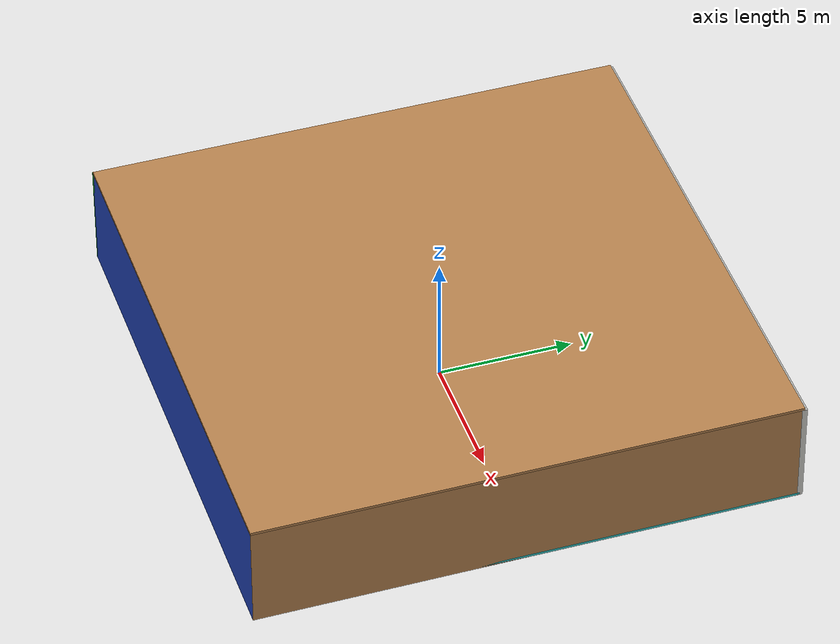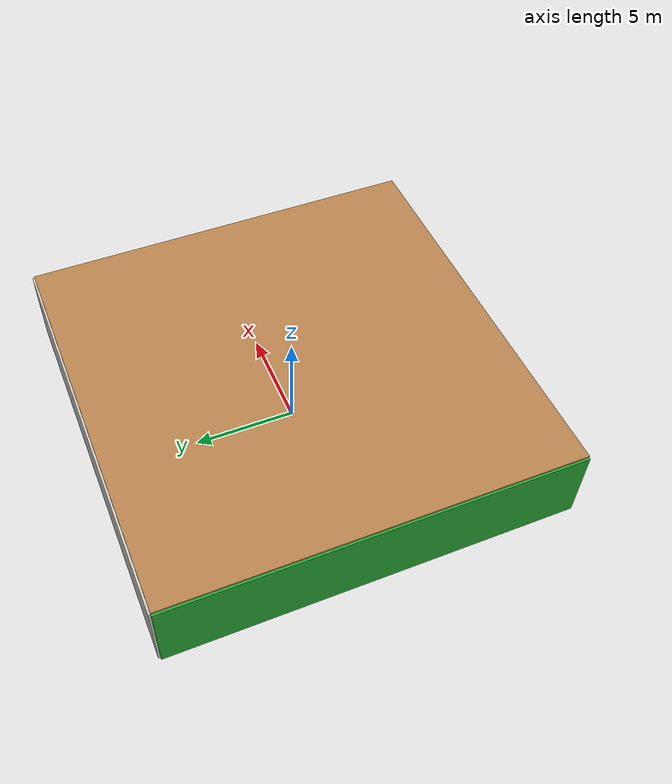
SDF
<sdf version="1.4">
 <world name="default">
  <physics type="ode">
   <max_step_size>0.001</max_step_size>
   <real_time_factor>1</real_time_factor>
   <real_time_update_rate>1000</real_time_update_rate>
   <gravity>0 0 -9.8</gravity>
  </physics>
  <scene><ambient>0.4 0.4 0.4 1</ambient><background>0.7 0.7 0.7 1</background><shadows>1</shadows></scene>
  <model name="Surrounding">
   <static>1</static>
   <link name="Ceiling">
    <collision name="Ceiling_Collision"><geometry><box><size>20 20 0.1</size></box></geometry></collision>
    <visual name="Ceiling_Visual">
     <geometry><box><size>20 20 0.1</size></box></geometry>
     <material>
      <script><uri>file://media/materials/scripts/gazebo.material</uri><name>Gazebo/Wood</name></script>
     </material>
    </visual>
    <pose>0 0 4.05 0 0 0</pose>
   </link>
   <link name="Wall_South">
    <collision name="Wall_South_Collision">
     <geometry><box><size>20 0 4</size></box></geometry>
     <pose>0 0 2 0 -0 0</pose>
    </collision>
    <visual name="Wall_South_Visual">
     <pose>0 0 2 0 -0 0</pose>
     <geometry><box><size>20 0 4</size></box></geometry>
     <material>
      <script><uri>file://media/materials/scripts/gazebo.material</uri><name>Gazebo/BlueGlow</name></script>
     </material>
    </visual>
    <velocity_decay><linear>0</linear><angular>0</angular></velocity_decay>
    <pose>0 -10 0 0 -0 0</pose>
   </link>
   <link name="Wall_East">
    <collision name="Wall_21_Collision">
     <geometry><box><size>20 0 4</size></box></geometry>
     <pose>0 0 2 0 -0 0</pose>
    </collision>
    <visual name="Wall_21_Visual">
     <pose>0 0 2 0 -0 0</pose>
     <geometry><box><size>20 0 4</size></box></geometry>
     <material>
      <script><uri>file://media/materials/scripts/gazebo.material</uri><name>Gazebo/WoodFloor</name></script>
     </material>
    </visual>
    <velocity_decay><linear>0</linear><angular>0</angular></velocity_decay>
    <pose>10 0 0 0 -0 1.5708</pose>
   </link>
   <link name="Wall_North">
    <collision name="Wall_22_Collision">
     <geometry><box><size>20 0.2 4</size></box></geometry>
     <pose>0 0 2 0 -0 0</pose>
    </collision>
    <visual name="Wall_22_Visual">
     <pose>0 0 2 0 -0 0</pose>
     <geometry><box><size>20 0.2 4</size></box></geometry>
     <material>
      <script><uri>file://media/materials/scripts/gazebo.material</uri><name>Gazebo/CeilingTiled</name></script>
     </material>
    </visual>
    <velocity_decay><linear>0</linear><angular>0</angular></velocity_decay>
    <pose>0 10 0 0 -0 0</pose>
   </link>
   <link name="Wall_West">
    <collision name="Wall_23_Collision">
     <geometry><box><size>20 0.2 4</size></box></geometry>
     <pose>0 0 2 0 -0 0</pose>
    </collision>
    <visual name="Wall_23_Visual">
     <pose>0 0 2 0 -0 0</pose>
     <geometry><box><size>20 0.2 4</size></box></geometry>
     <material>
      <script><uri>file://media/materials/scripts/gazebo.material</uri><name>Gazebo/Green</name></script>
     </material>
    </visual>
    <velocity_decay><linear>0</linear><angular>0</angular></velocity_decay>
    <pose>-10 0 0 0 0 -1.5708</pose>
   </link>
   <link name="Ground_link">
    <collision name="collision">
     <pose>0 0 .05 0 -0 0</pose>
     <geometry><box><size>20 20 0.1</size></box></geometry>
    </collision>
    <visual name="visual">
     <pose>0 0 .05 0 -0 0</pose>
     <geometry><box><size>20 20 0.1</size></box></geometry>
     <material>
      <script>
       <uri>file://media/materials/scripts/gazebo.material</uri>
       <name>Gazebo/TurquoiseGlowOutline</name>
      </script>
     </material>
    </visual>
   </link>
   <static>1</static>
  </model>
  <spherical_coordinates>
   <surface_model>EARTH_WGS84</surface_model>
   <latitude_deg>0</latitude_deg>
   <longitude_deg>0</longitude_deg>
   <elevation>0</elevation>
   <heading_deg>0</heading_deg>
  </spherical_coordinates>
  <light name="lightball_0" type="diffuse">
   <diffuse>0.8 0.8 0.8 1</diffuse>
   <specular>0.2 0.2 0.2 1</specular>
   <attenuation>
    <range>100</range>
    <constant>0.7</constant>
    <linear>0.01</linear>
    <quadratic>0.001</quadratic>
   </attenuation>
   <direction>-0.5 0.1 -0.9</direction>
   <pose>9.42359550009 4.2778774974 1.97514606109 0 0 0</pose>
  </light>
  <light name="lightball_1" type="diffuse">
   <diffuse>0.8 0.8 0.8 1</diffuse>
   <specular>0.2 0.2 0.2 1</specular>
   <attenuation>
    <range>100</range>
    <constant>0.7</constant>
    <linear>0.01</linear>
    <quadratic>0.001</quadratic>
   </attenuation>
   <direction>-0.5 0.1 -0.9</direction>
   <pose>-8.31466433002 5.11875691907 3.44073410915 0 0 0</pose>
  </light>
  <light name="lightball_2" type="diffuse">
   <diffuse>0.8 0.8 0.8 1</diffuse>
   <specular>0.2 0.2 0.2 1</specular>
   <attenuation>
    <range>100</range>
    <constant>0.7</constant>
    <linear>0.01</linear>
    <quadratic>0.001</quadratic>
   </attenuation>
   <direction>-0.5 0.1 -0.9</direction>
   <pose>-4.7104252997 -2.92828178882 3.51662110477 0 0 0</pose>
  </light>
  <light name="lightball_3" type="diffuse">
   <diffuse>0.8 0.8 0.8 1</diffuse>
   <specular>0.2 0.2 0.2 1</specular>
   <attenuation>
    <range>100</range>
    <constant>0.7</constant>
    <linear>0.01</linear>
    <quadratic>0.001</quadratic>
   </attenuation>
   <direction>-0.5 0.1 -0.9</direction>
   <pose>-9.87180636223 9.18185128186 3.1972291139 0 0 0</pose>
  </light>
  <light name="lightball_4" type="diffuse">
   <diffuse>0.8 0.8 0.8 1</diffuse>
   <specular>0.2 0.2 0.2 1</specular>
   <attenuation>
    <range>100</range>
    <constant>0.7</constant>
    <linear>0.01</linear>
    <quadratic>0.001</quadratic>
   </attenuation>
   <direction>-0.5 0.1 -0.9</direction>
   <pose>5.05123579174 0.372502100635 2.55368437696 0 0 0</pose>
  </light>
  <light name="lightball_5" type="diffuse">
   <diffuse>0.8 0.8 0.8 1</diffuse>
   <specular>0.2 0.2 0.2 1</specular>
   <attenuation>
    <range>100</range>
    <constant>0.7</constant>
    <linear>0.01</linear>
    <quadratic>0.001</quadratic>
   </attenuation>
   <direction>-0.5 0.1 -0.9</direction>
   <pose>-9.90081892004 0.326804203186 2.46425072957 0 0 0</pose>
  </light>
  <light name="lightball_6" type="diffuse">
   <diffuse>0.8 0.8 0.8 1</diffuse>
   <specular>0.2 0.2 0.2 1</specular>
   <attenuation>
    <range>100</range>
    <constant>0.7</constant>
    <linear>0.01</linear>
    <quadratic>0.001</quadratic>
   </attenuation>
   <direction>-0.5 0.1 -0.9</direction>
   <pose>9.45309746077 -9.66605691797 1.37567857455 0 0 0</pose>
  </light>
  <light name="lightball_7" type="diffuse">
   <diffuse>0.8 0.8 0.8 1</diffuse>
   <specular>0.2 0.2 0.2 1</specular>
   <attenuation>
    <range>100</range>
    <constant>0.7</constant>
    <linear>0.01</linear>
    <quadratic>0.001</quadratic>
   </attenuation>
   <direction>-0.5 0.1 -0.9</direction>
   <pose>1.39231005909 6.71848585151 0.619584928056 0 0 0</pose>
  </light>
  <light name="lightball_8" type="diffuse">
   <diffuse>0.8 0.8 0.8 1</diffuse>
   <specular>0.2 0.2 0.2 1</specular>
   <attenuation>
    <range>100</range>
    <constant>0.7</constant>
    <linear>0.01</linear>
    <quadratic>0.001</quadratic>
   </attenuation>
   <direction>-0.5 0.1 -0.9</direction>
   <pose>-1.90746149354 0.785035182711 3.82859035758 0 0 0</pose>
  </light>
  <light name="lightball_9" type="diffuse">
   <diffuse>0.8 0.8 0.8 1</diffuse>
   <specular>0.2 0.2 0.2 1</specular>
   <attenuation>
    <range>100</range>
    <constant>0.7</constant>
    <linear>0.01</linear>
    <quadratic>0.001</quadratic>
   </attenuation>
   <direction>-0.5 0.1 -0.9</direction>
   <pose>2.92912234576 3.9190403318 3.88692928289 0 0 0</pose>
  </light>
  <light name="lightball_10" type="diffuse">
   <diffuse>0.8 0.8 0.8 1</diffuse>
   <specular>0.2 0.2 0.2 1</specular>
   <attenuation>
    <range>100</range>
    <constant>0.7</constant>
    <linear>0.01</linear>
    <quadratic>0.001</quadratic>
   </attenuation>
   <direction>-0.5 0.1 -0.9</direction>
   <pose>-9.7590625845 -9.48940836335 0.565054709038 0 0 0</pose>
  </light>
  <light name="lightball_11" type="diffuse">
   <diffuse>0.8 0.8 0.8 1</diffuse>
   <specular>0.2 0.2 0.2 1</specular>
   <attenuation>
    <range>100</range>
    <constant>0.7</constant>
    <linear>0.01</linear>
    <quadratic>0.001</quadratic>
   </attenuation>
   <direction>-0.5 0.1 -0.9</direction>
   <pose>8.44517917302 -5.37036507829 0.656185797145 0 0 0</pose>
  </light>
  <light name="lightball_12" type="diffuse">
   <diffuse>0.8 0.8 0.8 1</diffuse>
   <specular>0.2 0.2 0.2 1</specular>
   <attenuation>
    <range>100</range>
    <constant>0.7</constant>
    <linear>0.01</linear>
    <quadratic>0.001</quadratic>
   </attenuation>
   <direction>-0.5 0.1 -0.9</direction>
   <pose>-4.84529113606 7.74497096874 2.23025792978 0 0 0</pose>
  </light>
  <light name="lightball_13" type="diffuse">
   <diffuse>0.8 0.8 0.8 1</diffuse>
   <specular>0.2 0.2 0.2 1</specular>
   <attenuation>
    <range>100</range>
    <constant>0.7</constant>
    <linear>0.01</linear>
    <quadratic>0.001</quadratic>
   </attenuation>
   <direction>-0.5 0.1 -0.9</direction>
   <pose>0.510648263001 -4.62769979514 3.20165457032 0 0 0</pose>
  </light>
  <include>
   <uri>model://textured_shapes</uri>
   <pose>-4.68981013081 -5.5174190547 0 0 0 0.446275418718</pose>
  </include>
  <include><uri>model://table</uri><pose>-5.12595047378 0.331964702587 0 0 0 0.311174448682</pose></include>
  <include><uri>model://cabinet</uri><pose>-1.04228679735 -6.85730641505 0 0 0 1.48340431924</pose></include>
  <include>
   <uri>model://textured_shapes</uri>
   <pose>-2.20053864624 4.7843011237 0 0 0 2.77243146799</pose>
  </include>
  <include>
   <uri>model://construction_cone</uri>
   <pose>-1.59062586528 6.82014582582 0 0 0 2.97681298087</pose>
  </include>
  <include>
   <uri>model://textured_shapes</uri>
   <pose>0.507105394445 2.30875636009 0 0 0 1.50120803307</pose>
  </include>
  <include><uri>model://cabinet</uri><pose>0.808412935803 3.33395884235 0 0 0 1.74601785017</pose></include>
  <include>
   <uri>model://robocup_3Dsim_goal</uri>
   <pose>1.19241590382 8.20087328313 0 0 0 1.7215148604</pose>
  </include>
  <include><uri>model://cabinet</uri><pose>5.52544403924 6.96220140526 0 0 0 1.42873180919</pose></include>
  <include><uri>model://cabinet</uri><pose>6.87747732908 -8.06764101267 0 0 0 0.255180587173</pose></include>
 </world>
</sdf>

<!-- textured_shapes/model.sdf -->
<sdf version="1.6">
  <model name="textured_shapes">
    <pose>0 0 0.5 0 0 0</pose>
    <link name="box">
      <pose>0 -1.5 0 0 0 0</pose>
      <collision name="collision">
        <geometry>
          <box>
            <size>1 1 1</size>
          </box>
        </geometry>
      </collision>
      <visual name="visual">
        <geometry>
          <box>
            <size>1 1 1</size>
          </box>
        </geometry>
        <material>
          <script>
            <uri>model://../model_source/models/textured_shapes/materials/scripts</uri>
            <uri>model://../model_source/models/textured_shapes/materials/textures</uri>
            <name>TexturedShape/Squares</name>
          </script>
        </material>
      </visual>
    </link>
    <link name="sphere">
      <collision name="collision">
        <geometry>
          <sphere>
            <radius>0.5</radius>
          </sphere>
        </geometry>
      </collision>
      <visual name="visual">
        <geometry>
          <sphere>
            <radius>0.5</radius>
          </sphere>
        </geometry>
        <material>
          <script>
            <uri>model://../model_source/models/textured_shapes/materials/scripts</uri>
            <uri>model://../model_source/models/textured_shapes/materials/textures</uri>
            <name>TexturedShape/Squares</name>
          </script>
        </material>
      </visual>
    </link>
    <link name="cylinder">
      <pose>0 1.5 0 0 0 0</pose>
      <collision name="collision">
        <geometry>
          <cylinder>
            <radius>0.5</radius>
            <length>1</length>
          </cylinder>
        </geometry>
      </collision>
      <visual name="visual">
        <geometry>
          <cylinder>
            <radius>0.5</radius>
            <length>1</length>
          </cylinder>
        </geometry>
        <material>
          <script>
            <uri>model://../model_source/models/textured_shapes/materials/scripts</uri>
            <uri>model://../model_source/models/textured_shapes/materials/textures</uri>
            <name>TexturedShape/Squares</name>
          </script>
        </material>
      </visual>
    </link>
  </model>
</sdf>

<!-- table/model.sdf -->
<sdf version="1.5">
  <model name="table">
    <static>true</static>
    <link name="link">
      <collision name="surface">
        <pose>0 0 1.0 0 0 0</pose>
        <geometry>
          <box>
            <size>1.5 0.8 0.03</size>
          </box>
        </geometry>
        <surface>
          <friction>
            <ode>
              <mu>0.6</mu>
              <mu2>0.6</mu2>
            </ode>
          </friction>
        </surface>
      </collision>
      <visual name="visual1">
        <pose>0 0 1.0 0 0 0</pose>
        <geometry>
          <box>
            <size>1.5 0.8 0.03</size>
          </box>
        </geometry>
        <material>
          <script>
            <uri>model://media/materials/scripts/gazebo.material</uri>
            <name>Gazebo/Wood</name>
          </script>
        </material>
      </visual>
      <collision name="front_left_leg">
        <pose>0.68 0.38 0.5 0 0 0</pose>
        <geometry>
          <cylinder>
            <radius>0.02</radius>
            <length>1.0</length>
          </cylinder>
        </geometry>
      </collision>
      <visual name="front_left_leg">
        <pose>0.68 0.38 0.5 0 0 0</pose>
        <geometry>
          <cylinder>
            <radius>0.02</radius>
            <length>1.0</length>
          </cylinder>
        </geometry>
        <material>
          <script>
            <uri>model://media/materials/scripts/gazebo.material</uri>
            <name>Gazebo/Grey</name>
          </script>
        </material>
      </visual>
      <collision name="front_right_leg">
        <pose>0.68 -0.38 0.5 0 0 0</pose>
        <geometry>
          <cylinder>
            <radius>0.02</radius>
            <length>1.0</length>
          </cylinder>
        </geometry>
      </collision>
      <visual name="front_right_leg">
        <pose>0.68 -0.38 0.5 0 0 0</pose>
        <geometry>
          <cylinder>
            <radius>0.02</radius>
            <length>1.0</length>
          </cylinder>
        </geometry>
        <material>
          <script>
            <uri>model://media/materials/scripts/gazebo.material</uri>
            <name>Gazebo/Grey</name>
          </script>
        </material>
      </visual>
      <collision name="back_right_leg">
        <pose>-0.68 -0.38 0.5 0 0 0</pose>
        <geometry>
          <cylinder>
            <radius>0.02</radius>
            <length>1.0</length>
          </cylinder>
        </geometry>
      </collision>
      <visual name="back_right_leg">
        <pose>-0.68 -0.38 0.5 0 0 0</pose>
        <geometry>
          <cylinder>
            <radius>0.02</radius>
            <length>1.0</length>
          </cylinder>
        </geometry>
        <material>
          <script>
            <uri>model://media/materials/scripts/gazebo.material</uri>
            <name>Gazebo/Grey</name>
          </script>
        </material>
      </visual>
      <collision name="back_left_leg">
        <pose>-0.68 0.38 0.5 0 0 0</pose>
        <geometry>
          <cylinder>
            <radius>0.02</radius>
            <length>1.0</length>
          </cylinder>
        </geometry>
      </collision>
      <visual name="back_left_leg">
        <pose>-0.68 0.38 0.5 0 0 0</pose>
        <geometry>
          <cylinder>
            <radius>0.02</radius>
            <length>1.0</length>
          </cylinder>
        </geometry>
        <material>
          <script>
            <uri>model://media/materials/scripts/gazebo.material</uri>
            <name>Gazebo/Grey</name>
          </script>
        </material>
      </visual>
    </link>
  </model>
</sdf>

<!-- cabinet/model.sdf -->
<sdf version="1.5">
  <model name="cabinet">
    <static>true</static>
    <link name="cabinet_bottom_plate">
      <inertial>
        <pose>0 0 -1 0 0 0</pose>
        <inertia>
          <ixx>2.050000</ixx>
          <ixy>0</ixy>
          <ixz>0</ixz>
          <iyy>2.050000</iyy>
          <iyz>0</iyz>
          <izz>2.050000</izz>
        </inertia>
        <mass>25.000000</mass>
      </inertial>
      <collision name="cabinet_bottom_plate_geom">
        <pose>0 0 0.010000 0 0 0</pose>
        <geometry>
          <box>
            <size>0.450000 0.450000 0.020000</size>
          </box>
        </geometry>
      </collision>
      <visual name="cabinet_bottom_plate_geom_visual">
        <pose>0 0 0.010000 0 0 0</pose>
        <geometry>
          <box>
            <size>0.450000 0.450000 0.020000</size>
          </box>
        </geometry>
        <material>
          <script>
            <uri>model://media/materials/scripts/gazebo.material</uri>
            <name>Gazebo/Wood</name>
          </script>
        </material>
      </visual>
      <collision name="cabinet_bottom_plate_geom_cabinet_back_plate">
        <pose>0.235000 0 0.510000 0 0 0</pose>
        <geometry>
          <box>
            <size>0.020000 0.450000 1.020000</size>
          </box>
        </geometry>
      </collision>
      <visual name="cabinet_bottom_plate_geom_cabinet_back_plate_visual">
        <pose>0.235000 0 0.510000 0 0 0</pose>
        <geometry>
          <box>
            <size>0.020000 0.450000 1.020000</size>
          </box>
        </geometry>
        <material>
          <script>
            <uri>model://media/materials/scripts/gazebo.material</uri>
            <name>Gazebo/Wood</name>
          </script>
        </material>
      </visual>
      <collision name="cabinet_bottom_plate_geom_cabinet_left_plate">
        <pose>0 0.235000 0.510000 0 0 0</pose>
        <geometry>
          <box>
            <size>0.450000 0.020000 1.020000</size>
          </box>
        </geometry>
      </collision>
      <visual name="cabinet_bottom_plate_geom_cabinet_left_plate_visual">
        <pose>0 0.235000 0.510000 0 0 0</pose>
        <geometry>
          <box>
            <size>0.450000 0.020000 1.020000</size>
          </box>
        </geometry>
        <material>
          <script>
            <uri>model://media/materials/scripts/gazebo.material</uri>
            <name>Gazebo/Wood</name>
          </script>
        </material>
      </visual>
      <collision name="cabinet_bottom_plate_geom_cabinet_middle_plate">
        <pose>0 0 0.510000 0 0 0</pose>
        <geometry>
          <box>
            <size>0.450000 0.450000 0.020000</size>
          </box>
        </geometry>
      </collision>
      <visual name="cabinet_bottom_plate_geom_cabinet_middle_plate_visual">
        <pose>0 0 0.510000 0 0 0</pose>
        <geometry>
          <box>
            <size>0.450000 0.450000 0.020000</size>
          </box>
        </geometry>
        <material>
          <script>
            <uri>model://media/materials/scripts/gazebo.material</uri>
            <name>Gazebo/Wood</name>
          </script>
        </material>
      </visual>
      <collision name="cabinet_bottom_plate_geom_cabinet_right_plate">
        <pose>0 -0.235000 0.510000 0 0 0</pose>
        <geometry>
          <box>
            <size>0.450000 0.020000 1.020000</size>
          </box>
        </geometry>
      </collision>
      <visual name="cabinet_bottom_plate_geom_cabinet_right_plate_visual">
        <pose>0 -0.235000 0.510000 0 0 0</pose>
        <geometry>
          <box>
            <size>0.450000 0.020000 1.020000</size>
          </box>
        </geometry>
        <material>
          <script>
            <uri>model://media/materials/scripts/gazebo.material</uri>
            <name>Gazebo/Wood</name>
          </script>
        </material>
      </visual>
      <collision name="cabinet_bottom_plate_geom_cabinet_top_plate">
        <pose>0 0 1.010000 0 0 0</pose>
        <geometry>
          <box>
            <size>0.450000 0.450000 0.020000</size>
          </box>
        </geometry>
      </collision>
      <visual name="cabinet_bottom_plate_geom_cabinet_top_plate_visual">
        <pose>0 0 1.010000 0 0 0</pose>
        <geometry>
          <box>
            <size>0.450000 0.450000 0.020000</size>
          </box>
        </geometry>
        <material>
          <script>
            <uri>model://media/materials/scripts/gazebo.material</uri>
            <name>Gazebo/Wood</name>
          </script>
        </material>
      </visual>
    </link>
  </model>
</sdf>

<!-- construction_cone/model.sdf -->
<sdf version="1.5">
  <model name="Construction Cone">
    <link name="link">
      <collision name="collision">
        <geometry>
          <mesh>
            <scale>10 10 10</scale>
            <uri>file://isr-testbed/construction_cone/meshes/construction_cone.dae</uri>
          </mesh>
        </geometry>
      </collision>
      <visual name="visual">
        <geometry>
          <mesh>
            <scale>10 10 10</scale>
            <uri>file://isr-testbed/construction_cone/meshes/construction_cone.dae</uri>
          </mesh>
        </geometry>
      </visual>
    </link>
  </model>
</sdf>

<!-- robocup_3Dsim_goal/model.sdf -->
<sdf version="1.5">
  <model name="robocup_3d_goal">
    <static>true</static>
    <link name="left_post">
      <pose>0 1.05 0.45 0 0 0</pose>
      <collision name="collision">
        <geometry>
          <cylinder>
            <radius>0.05</radius>
            <length>0.9</length>
          </cylinder>
        </geometry>
      </collision>
      <visual name="visual">
        <geometry>
          <cylinder>
            <radius>0.05</radius>
            <length>0.9</length>
          </cylinder>
        </geometry>
        <material>
          <script>
            <uri>file://media/materials/scripts/gazebo.material</uri>
            <name>Gazebo/ZincYellow</name>
          </script>
        </material>
      </visual>
    </link>
    <link name="left_support_horiz_lower">
      <pose>0.30 1.05 0.01 0 0 0</pose>
      <collision name="collision">
        <geometry>
          <box>
            <size>0.50 0.02 0.02</size>
          </box>
        </geometry>
      </collision>
      <visual name="visual">
        <geometry>
          <box>
            <size>0.50 0.02 0.02</size>
          </box>
        </geometry>
        <material>
          <script>
            <uri>file://media/materials/scripts/gazebo.material</uri>
            <name>Gazebo/White</name>
          </script>
        </material>
      </visual>
    </link>
    <link name="left_support_horiz_upper">
      <pose>0.30 1.05 0.79 0 0 0</pose>
      <collision name="collision">
        <geometry>
          <box>
            <size>0.50 0.02 0.02</size>
          </box>
        </geometry>
      </collision>
      <visual name="visual">
        <geometry>
          <box>
            <size>0.50 0.02 0.02</size>
          </box>
        </geometry>
        <material>
          <script>
            <uri>file://media/materials/scripts/gazebo.material</uri>
            <name>Gazebo/White</name>
          </script>
        </material>
      </visual>
    </link>
    <link name="left_support_vertical">
      <pose>0.56 1.05 0.4 0 1.5708 0</pose>
      <collision name="collision">
        <geometry>
          <box>
            <size>0.80 0.02 0.02</size>
          </box>
        </geometry>
      </collision>
      <visual name="visual">
        <geometry>
          <box>
            <size>0.80 0.02 0.02</size>
          </box>
        </geometry>
        <material>
          <script>
            <uri>file://media/materials/scripts/gazebo.material</uri>
            <name>Gazebo/White</name>
          </script>
        </material>
      </visual>
    </link>
    <link name="right_support_horiz_lower">
      <pose>0.30 -1.05 0.01 0 0 0</pose>
      <collision name="collision">
        <geometry>
          <box>
            <size>0.50 0.02 0.02</size>
          </box>
        </geometry>
      </collision>
      <visual name="visual">
        <geometry>
          <box>
            <size>0.50 0.02 0.02</size>
          </box>
        </geometry>
        <material>
          <script>
            <uri>file://media/materials/scripts/gazebo.material</uri>
            <name>Gazebo/White</name>
          </script>
        </material>
      </visual>
    </link>
    <link name="right_support_horiz_upper">
      <pose>0.30 -1.05 0.79 0 0 0</pose>
      <collision name="collision">
        <geometry>
          <box>
            <size>0.50 0.02 0.02</size>
          </box>
        </geometry>
      </collision>
      <visual name="visual">
        <geometry>
          <box>
            <size>0.50 0.02 0.02</size>
          </box>
        </geometry>
        <material>
          <script>
            <uri>file://media/materials/scripts/gazebo.material</uri>
            <name>Gazebo/White</name>
          </script>
        </material>
      </visual>
    </link>
    <link name="right_support_vertical">
      <pose>0.56 -1.05 0.4 0 1.5708 0</pose>
      <collision name="collision">
        <geometry>
          <box>
            <size>0.80 0.02 0.02</size>
          </box>
        </geometry>
      </collision>
      <visual name="visual">
        <geometry>
          <box>
            <size>0.80 0.02 0.02</size>
          </box>
        </geometry>
        <material>
          <script>
            <uri>file://media/materials/scripts/gazebo.material</uri>
            <name>Gazebo/White</name>
          </script>
        </material>
      </visual>
    </link>
    <link name="center_support_horiz_lower">
      <pose>0.56 0 0.01 0 1.5708 0</pose>
      <collision name="collision">
        <geometry>
          <box>
            <size>0.02 2.08 0.02</size>
          </box>
        </geometry>
      </collision>
      <visual name="visual">
        <geometry>
          <box>
            <size>0.02 2.08 0.02</size>
          </box>
        </geometry>
        <material>
          <script>
            <uri>file://media/materials/scripts/gazebo.material</uri>
            <name>Gazebo/White</name>
          </script>
        </material>
      </visual>
    </link>
    <link name="center_support_horiz_upper">
      <pose>0.56 0 0.79 0 1.5708 0</pose>
      <collision name="collision">
        <geometry>
          <box>
            <size>0.02 2.08 0.02</size>
          </box>
        </geometry>
      </collision>
      <visual name="visual">
        <geometry>
          <box>
            <size>0.02 2.08 0.02</size>
          </box>
        </geometry>
        <material>
          <script>
            <uri>file://media/materials/scripts/gazebo.material</uri>
            <name>Gazebo/White</name>
          </script>
        </material>
      </visual>
    </link>
    <link name="right_post">
      <pose>0 -1.05 0.45 0 0 0</pose>
      <collision name="collision">
        <geometry>
          <cylinder>
            <radius>0.05</radius>
            <length>0.9</length>
          </cylinder>
        </geometry>
      </collision>
      <visual name="visual">
        <geometry>
          <cylinder>
            <radius>0.05</radius>
            <length>0.9</length>
          </cylinder>
        </geometry>
        <material>
          <script>
            <uri>file://media/materials/scripts/gazebo.material</uri>
            <name>Gazebo/ZincYellow</name>
          </script>
        </material>
      </visual>
    </link>
    <link name="crossbar">
      <pose>0 0 0.85 1.57 1.57 0</pose>
      <collision name="collision">
        <geometry>
          <cylinder>
            <radius>0.05</radius>
            <length>2.0</length>
          </cylinder>
        </geometry>
      </collision>
      <visual name="visual">
        <geometry>
          <cylinder>
            <radius>0.05</radius>
            <length>2.0</length>
          </cylinder>
        </geometry>
        <material>
          <script>
            <uri>file://media/materials/scripts/gazebo.material</uri>
            <name>Gazebo/ZincYellow</name>
          </script>
        </material>
      </visual>
    </link>
    <link name="center_net">
      <pose>0.56 0 0.40 0 0 0</pose>
      <collision name="collision">
        <geometry>
          <box>
            <size>0.01 2.1 0.80</size>
          </box>
        </geometry>
      </collision>
      <visual name="visual">
        <geometry>
          <box>
            <size>0.01 2.1 0.80</size>
          </box>
        </geometry>
        <material>
          <script>
            <uri>model://../model_source/models/robocup09_spl_field/materials/scripts/</uri>
            <uri>model://../model_source/models/robocup09_spl_field/materials/textures/</uri>
            <name>RoboCup/Net</name>
          </script>
        </material>
      </visual>
    </link>
    <link name="left_net">
      <pose>0.30 1.05 0.40 0 0 0</pose>
      <collision name="collision">
        <geometry>
          <box>
            <size>0.50 0.01 0.76</size>
          </box>
        </geometry>
      </collision>
      <visual name="visual">
        <geometry>
          <box>
            <size>0.50 0.01 0.76</size>
          </box>
        </geometry>
        <material>
          <script>
            <uri>model://../model_source/models/robocup09_spl_field/materials/scripts/</uri>
            <uri>model://../model_source/models/robocup09_spl_field/materials/textures/</uri>
            <name>RoboCup/Net</name>
          </script>
        </material>
      </visual>
    </link>
    <link name="right_net">
      <pose>0.30 -1.05 0.40 0 0 0</pose>
      <collision name="collision">
        <geometry>
          <box>
            <size>0.50 0.01 0.76</size>
          </box>
        </geometry>
      </collision>
      <visual name="visual">
        <geometry>
          <box>
            <size>0.50 0.01 0.76</size>
          </box>
        </geometry>
        <material>
          <script>
            <uri>model://../model_source/models/robocup09_spl_field/materials/scripts/</uri>
            <uri>model://../model_source/models/robocup09_spl_field/materials/textures/</uri>
            <name>RoboCup/Net</name>
          </script>
        </material>
      </visual>
    </link>
  </model>
</sdf>
